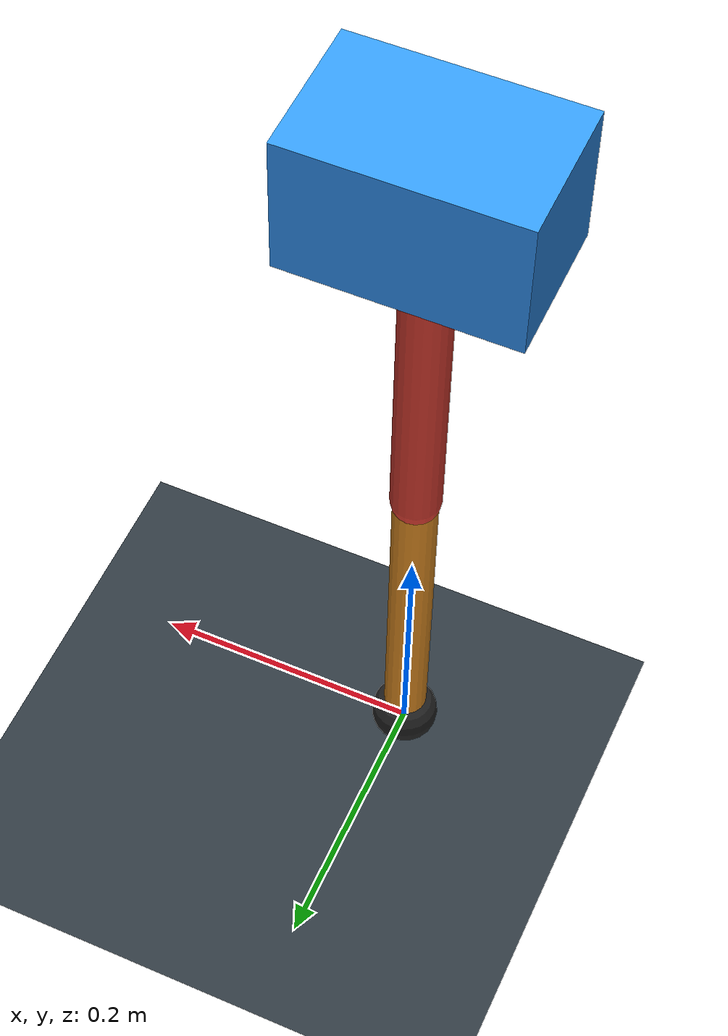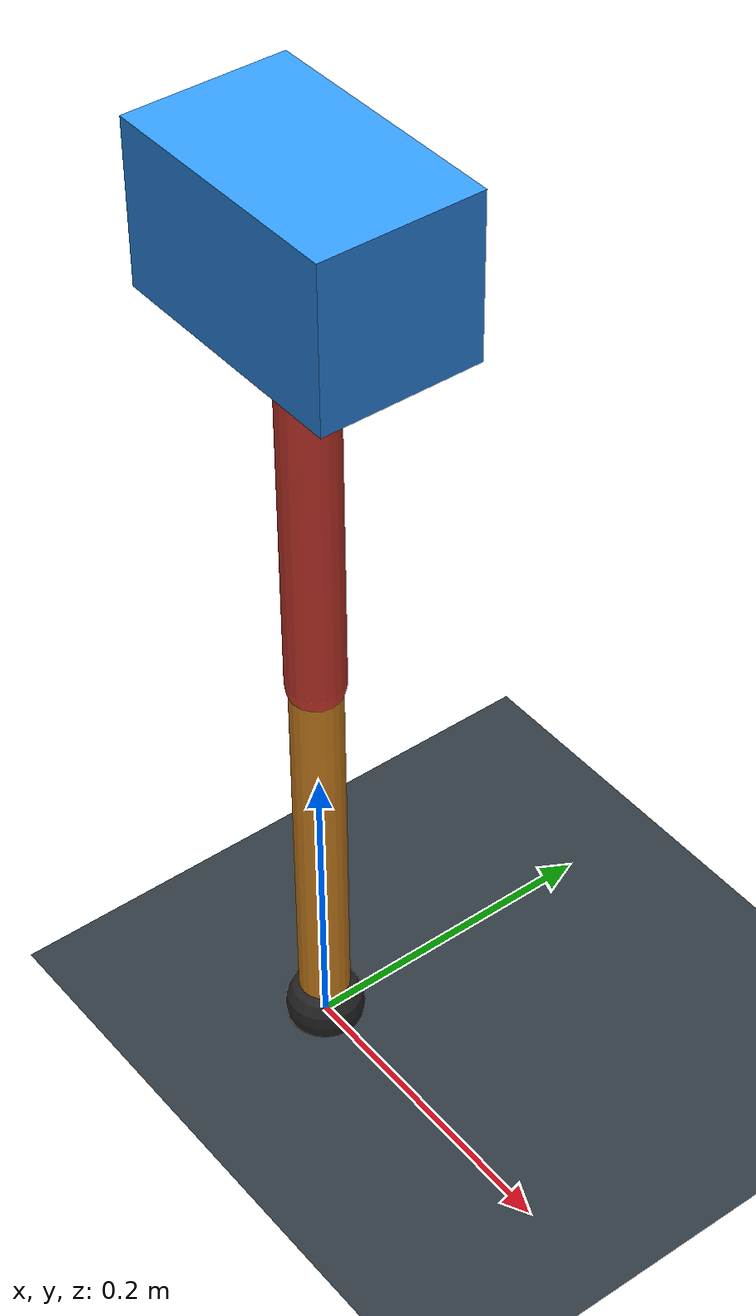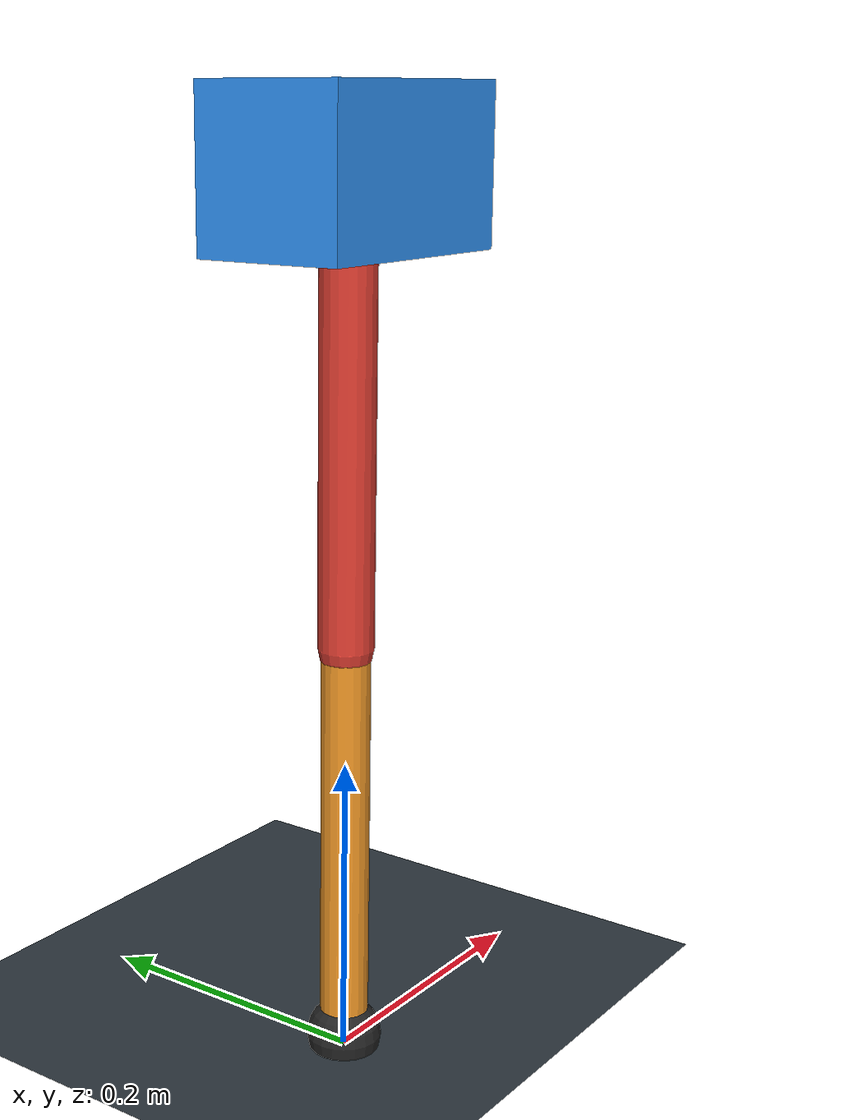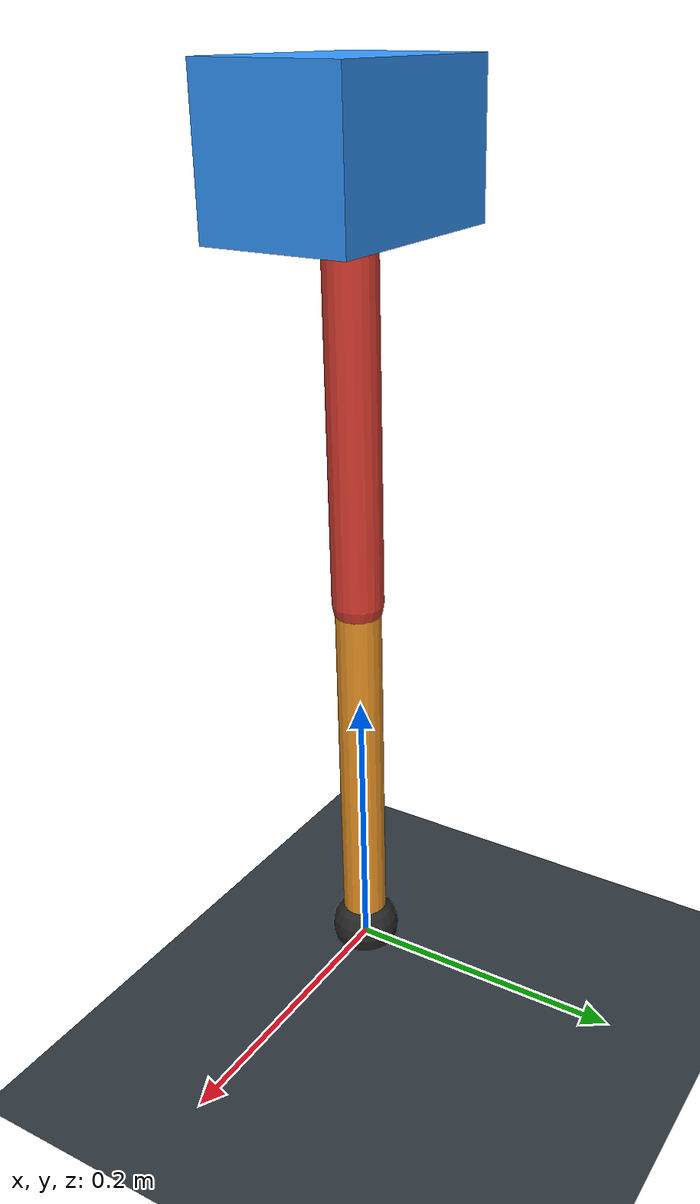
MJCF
<mujoco model="single_axis_two_bar">
  <compiler angle="radian" inertiafromgeom="true"/>
  <option timestep="0.001" integrator="implicitfast" gravity="0 0 -9.81"/>
  <default>
    <joint damping="0.08"/>
    <geom friction="1.2 0.01 0.0001" condim="3"/>
  </default>
  <worldbody>
    <geom name="floor" type="plane" size="5 5 0.1" rgba="0.18 0.22 0.25 1"/>
    <body name="carriage" pos="0 0 0.5746947753124572">
      <joint name="pole_slide" type="slide" axis="0 0 1"/>
      <geom name="payload" type="box" size="0.08 0.05 0.05" mass="2.453943013696618" rgba="0.2 0.6 1 1"/>
      <body name="thigh" pos="0 0 0">
        <joint name="hip" type="hinge" axis="0 1 0"/>
        <geom name="thigh_link" type="capsule" fromto="0 0 0 0 0 -0.2957860008160544" size="0.018" mass="0.21075143404860186" rgba="0.9 0.25 0.2 1"/>
        <body name="shank" pos="0 0 -0.2957860008160544">
          <joint name="knee" type="hinge" axis="0 1 0"/>
          <geom name="shank_link" type="capsule" fromto="0 0 0 0 0 -0.2709096438359633" size="0.016" mass="0.19302670098823116" rgba="0.95 0.6 0.15 1"/>
          <geom name="foot" type="sphere" pos="0 0 -0.2709096438359633" size="0.025" mass="0.03" rgba="0.15 0.15 0.15 1"/>
          <site name="toe" pos="0 0 -0.2709096438359633" size="0.008"/>
        </body>
      </body>
    </body>
  </worldbody>
  <actuator>
    <motor name="hip_motor" joint="hip" ctrlrange="-33.93848655297324 33.93848655297324"/>
    <motor name="knee_motor" joint="knee" ctrlrange="-39.66837397316527 39.66837397316527"/>
  </actuator>
</mujoco>
